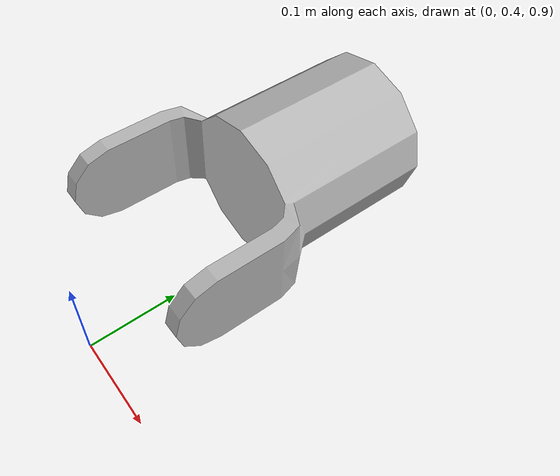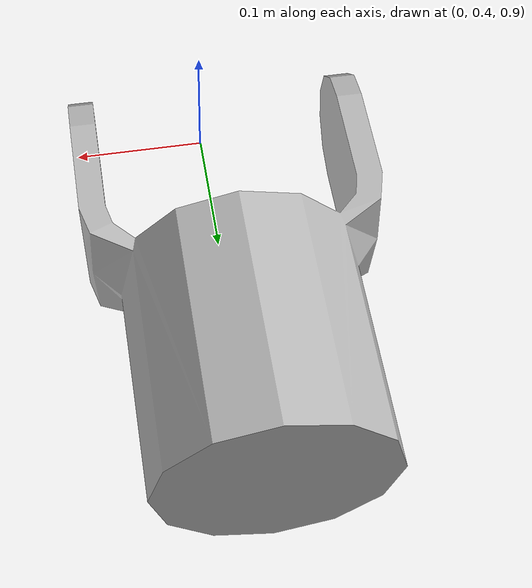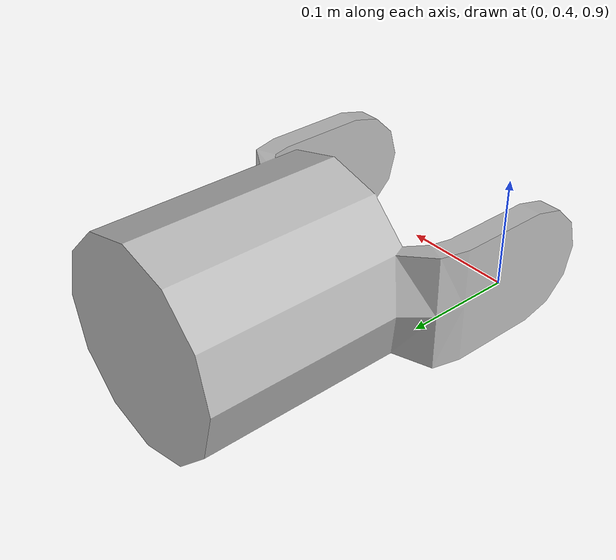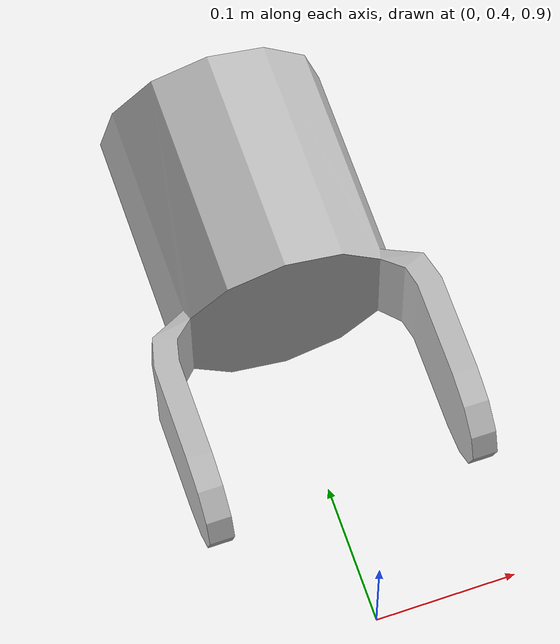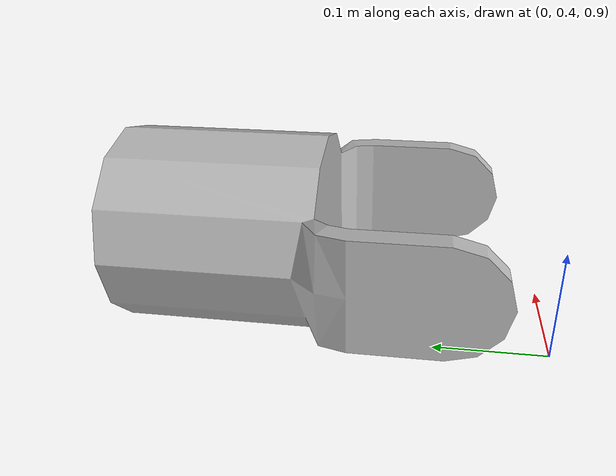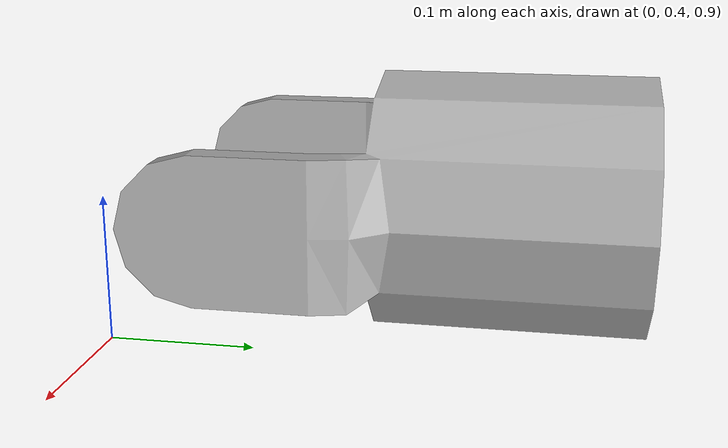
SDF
<sdf version="1.6">
 <world name="default">
  <model name="ground_plane">
   <static>1</static>
   <link name="link">
    <collision name="collision">
     <geometry><plane><normal>0 0 1</normal><size>100 100</size></plane></geometry>
     <surface><friction><ode><mu>100</mu><mu2>50</mu2></ode></friction></surface>
    </collision>
    <visual name="visual">
     <cast_shadows>0</cast_shadows>
     <geometry><plane><normal>0 0 1</normal><size>100 100</size></plane></geometry>
     <material>
      <script><uri>file://media/materials/scripts/gazebo.material</uri><name>Gazebo/Grey</name></script>
     </material>
    </visual>
   </link>
  </model>
  <model name="u_joint_part">
   <pose>0 0.750001 1.00929 1.5708 -0 0</pose>
   <link name="link">
    <inertial>
     <pose>0 0 0.08086 0 -0 0</pose>
     <mass>0.5</mass>
     <inertia>
      <ixx>0.00187559</ixx>
      <ixy>0</ixy>
      <ixz>0</ixz>
      <iyy>0.00187559</iyy>
      <iyz>0</iyz>
      <izz>0.00157173</izz>
     </inertia>
    </inertial>
    <collision name="collision1">
     <pose>0 0 0.08086 0 -0 0</pose>
     <geometry><cylinder><radius>0.07929</radius><length>0.16172</length></cylinder></geometry>
    </collision>
    <collision name="collision2">
     <pose>-0.09124 0 0.22804 0 -0 0</pose>
     <geometry><box><size>0.01716 0.08862 0.13878</size></box></geometry>
    </collision>
    <collision name="collision3">
     <pose>0.09124 0 0.22804 0 -0 0</pose>
     <geometry><box><size>0.01716 0.08862 0.13878</size></box></geometry>
    </collision>
    <visual name="visual">
     <geometry><mesh><uri>model://u_joint_part/meshes/u_joint.dae</uri><scale>1 1 1</scale></mesh></geometry>
     <material>
      <script>
       <uri>model://arm_part/materials/scripts</uri>
       <uri>model://arm_part/materials/textures</uri>
       <name>ArmPart/Diffuse</name>
      </script>
     </material>
    </visual>
   </link>
  </model>
 </world>
</sdf>
